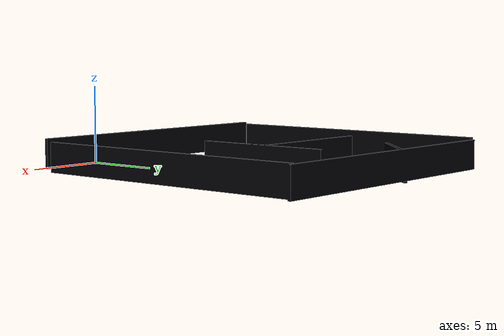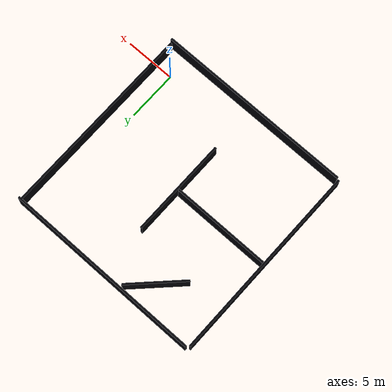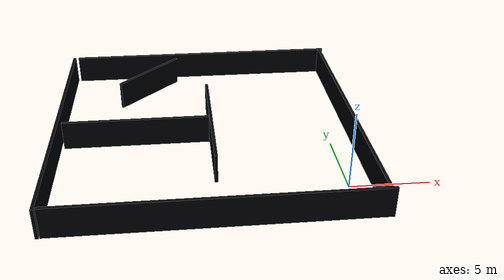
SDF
<?xml version="1.0" ?>
<sdf version="1.3">
    <model name="mapaSimple">

        <link name="mapa">
            <pose>0 0 0 0 0 0</pose>
            <collision name="collision">
                <geometry>
                    <mesh>
                        <uri>model://mapaSimple/meshes/mapa.dae</uri>
                        <scale>0.1 0.1 0.1</scale>
                    </mesh>
                </geometry>
            </collision>
            <visual name="visual">
                <pose>0 0 0 0 0 0</pose>
                <geometry>
                    <mesh>
                        <uri>model://mapaSimple/meshes/mapa.dae</uri>
                        <scale>0.1 0.1 0.1</scale>
                    </mesh>
                </geometry>
            </visual>
        </link>
    </model>
</sdf>
